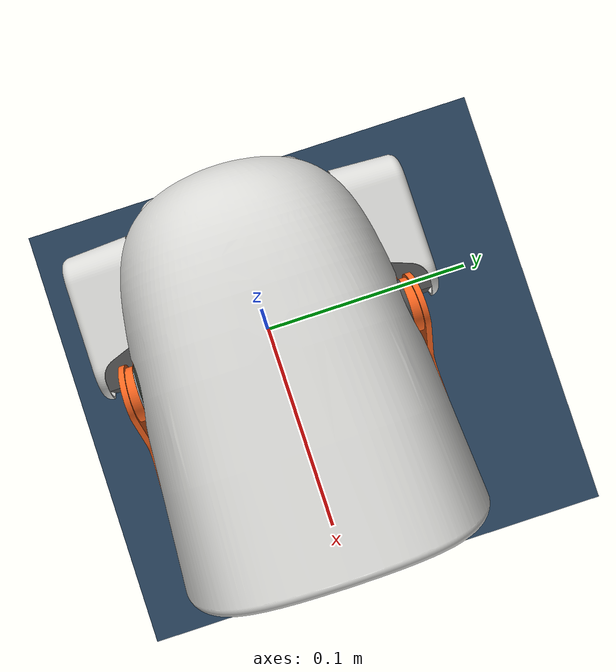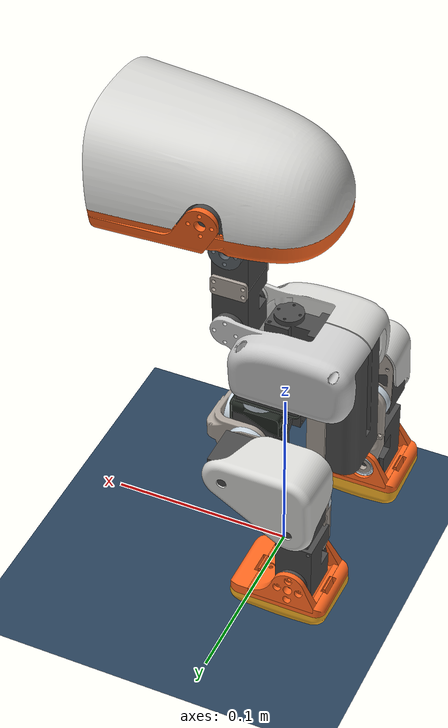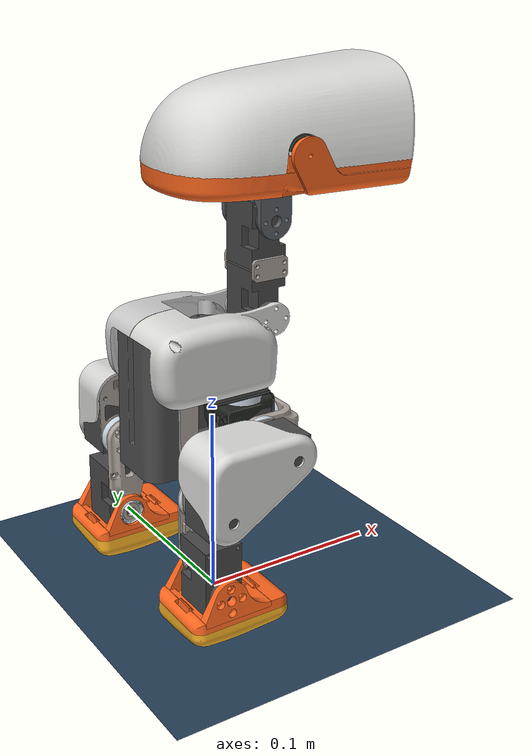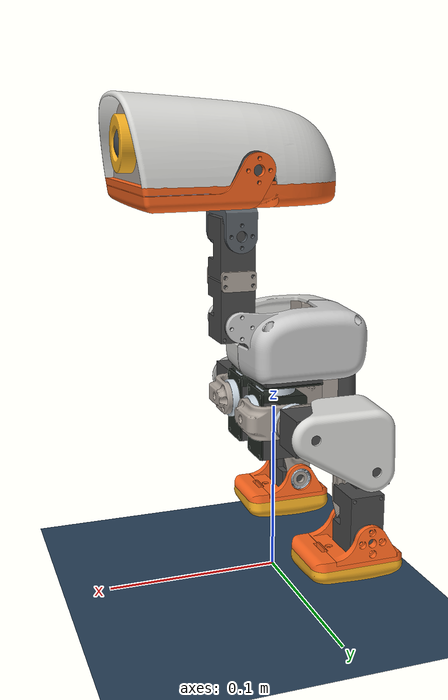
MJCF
<mujoco model="mjlab scene">
  <compiler angle="radian" meshdir="meshes"/>

  <option timestep="0.005" integrator="implicitfast" iterations="10" ls_iterations="20"/>

  <size nkey="1"/>

  <visual>
    <global azimuth="135" elevation="-25" offwidth="1920" offheight="1080"/>
    <quality shadowsize="8192"/>
    <headlight ambient="0.3 0.3 0.3" diffuse="0.6 0.6 0.6" specular="0 0 0"/>
    <scale forcewidth="0.25" contactwidth="0.4" contactheight="0.15" framelength="5" framewidth="0.3"/>
    <rgba haze="0.15 0.25 0.35 1" force="1 0 0 1"/>
  </visual>

  <statistic meansize="0.03" extent="2"/>

  <default>
    <default class="robot/main">

      <equality solref="0.002" solimp="0.99 0.999 0.0005"/>
      <default class="robot/microduck">
        <joint armature="0.005" frictionloss="0.1"/>

        <equality solref="0.02" solimp="0.9 0.95 0.001"/>
        <general biastype="affine" gainprm="50" biasprm="0 -50 1"/>
        <default class="robot/visual">
          <geom type="mesh" contype="0" conaffinity="0" group="2"/>
        </default>
        <default class="robot/collision">
          <geom group="3"/>
        </default>
      </default>
      <default class="robot/perfect_actuator">
        <joint armature="0.001" damping="0.15" frictionloss="0.1"/>
        <geom contype="0" conaffinity="0"/>

        <equality solref="0.02" solimp="0.9 0.95 0.001"/>
        <general forcerange="-20 20" biastype="affine" gainprm="10" biasprm="0 -10 -0.1"/>
      </default>
      <default class="robot/chosen_actuator_old">
        <joint armature="0.002" damping="0.048" frictionloss="0.006"/>
        <geom contype="0" conaffinity="0"/>

        <equality solref="0.02" solimp="0.9 0.95 0.001"/>
        <general ctrlrange="-10 10" forcerange="-0.91 0.91" biastype="affine" gainprm="0.52" biasprm="0 -0.52"/>
      </default>
      <default class="robot/chosen_actuator_new">
        <joint armature="0.002" damping="0.041" frictionloss="0.032"/>
        <geom contype="0" conaffinity="0"/>

        <equality solref="0.02" solimp="0.9 0.95 0.001"/>
        <general ctrlrange="-10 10" forcerange="-0.67 0.67" biastype="affine" gainprm="0.386" biasprm="0 -0.386"/>
      </default>
      <default class="robot/chosen_actuator_antoine">
        <joint armature="0.0017" damping="0.044" frictionloss="0.013"/>
        <geom contype="0" conaffinity="0"/>

        <equality solref="0.02" solimp="0.9 0.95 0.001"/>
        <general ctrlrange="-10 10" forcerange="-0.75 0.75" biastype="affine" gainprm="0.43" biasprm="0 -0.43"/>
      </default>
      <default class="robot/chosen_actuator">
        <joint armature="0.0018" damping="0.053" frictionloss="0.0048"/>
        <geom contype="0" conaffinity="0"/>

        <equality solref="0.02" solimp="0.9 0.95 0.001"/>
        <general ctrlrange="-10 10" forcerange="-0.96 0.96" biastype="affine" gainprm="0.55" biasprm="0 -0.55"/>
      </default>
      <default class="robot/passive_wheel">
        <joint armature="0.0001"/>
        <geom contype="0" conaffinity="0"/>

        <equality solref="0.02" solimp="0.9 0.95 0.001"/>
      </default>
      <default class="robot/passive_joint">
        <joint armature="0.0001"/>
        <geom contype="0" conaffinity="0"/>

        <equality solref="0.02" solimp="0.9 0.95 0.001"/>
      </default>
      <default class="robot/self_collision_only">
        <geom contype="2" conaffinity="2" group="3"/>
      </default>
    </default>
  </default>

  <asset>
    <texture type="2d" colorspace="auto" name="groundplane" builtin="checker" mark="edge" rgb1="0.2 0.3 0.4" rgb2="0.1 0.2 0.3" markrgb="0.8 0.8 0.8" width="300" height="300"/>
    <material name="groundplane" texture="groundplane" texuniform="true" texrepeat="4 4"/>
    <material name="robot/seeed_bearing__configuration__22x16x4_material" rgba="0.811765 0.858824 0.898039 1"/>
    <material name="robot/right_shell_material" rgba="0.85098 0.85098 0.839216 1"/>
    <material name="robot/banana_pcb_locker_material" rgba="0.647059 0.647059 0.647059 1"/>
    <material name="robot/trunk_base_material" rgba="0.129412 0.152941 0.129412 1"/>
    <material name="robot/xl330_material" rgba="0.286275 0.286275 0.286275 1"/>
    <material name="robot/power_support_material" rgba="0.67451 0.639216 0.603922 1"/>
    <material name="robot/np_f970_material" rgba="0.301961 0.301961 0.301961 1"/>
    <material name="robot/left_shell_material" rgba="0.8 0.8 0.8 1"/>
    <material name="robot/yaw2roll_material" rgba="0.129412 0.152941 0.129412 1"/>
    <material name="robot/bearing_roll_material" rgba="0.129412 0.152941 0.129412 1"/>
    <material name="robot/hip_l_material" rgba="0.67451 0.639216 0.603922 1"/>
    <material name="robot/upper_leg_left_material" rgba="0.85098 0.85098 0.839216 1"/>
    <material name="robot/upper_leg_rigidity_plate_material" rgba="0.67451 0.639216 0.603922 1"/>
    <material name="robot/leg_material" rgba="0.67451 0.639216 0.603922 1"/>
    <material name="robot/sole_left_material" rgba="0.956863 0.686275 0.137255 1"/>
    <material name="robot/foot_left_material" rgba="1 0.403922 0.121569 1"/>
    <material name="robot/seeed_bearing__configuration_default_material" rgba="0.811765 0.858824 0.898039 1"/>
    <material name="robot/ankle_left_material" rgba="1 0.403922 0.121569 1"/>
    <material name="robot/neck_material" rgba="0.67451 0.639216 0.603922 1"/>
    <material name="robot/neck_pitch_material" rgba="0.34902 0.376471 0.4 1"/>
    <material name="robot/yaw_roll_motion_material" rgba="0.129412 0.152941 0.129412 1"/>
    <material name="robot/lens_material" rgba="0.262745 0.282353 0.301961 1"/>
    <material name="robot/face_part_material" rgba="0.67451 0.639216 0.603922 1"/>
    <material name="robot/jaw_soft_material" rgba="0.85098 0.756863 0.866667 1"/>
    <material name="robot/motor_support_material" rgba="0.129412 0.152941 0.129412 1"/>
    <material name="robot/top_head_shell_material" rgba="0.85098 0.85098 0.839216 1"/>
    <material name="robot/elec_rpi_robot_hat_pcb_material" rgba="0.313725 0.486275 0.411765 1"/>
    <material name="robot/soft_mouth_top_material" rgba="0.85098 0.756863 0.866667 1"/>
    <material name="robot/noenoeil_material" rgba="0.956863 0.686275 0.137255 1"/>
    <material name="robot/jaw_material" rgba="1 0.403922 0.121569 1"/>
    <material name="robot/bottom_head_shell_material" rgba="1 0.403922 0.121569 1"/>
    <material name="robot/m12_lens_holder_material" rgba="0.262745 0.282353 0.301961 1"/>
    <material name="robot/pcb__raspberry_pi_zero_2_w_material" rgba="0.498039 0.498039 0.498039 1"/>
    <material name="robot/speaker_material" rgba="0.294118 0.290196 0.290196 1"/>
    <material name="robot/upper_leg_right_material" rgba="0.85098 0.85098 0.839216 1"/>
    <material name="robot/ankle_right_material" rgba="1 0.403922 0.121569 1"/>
    <material name="robot/sole_right_material" rgba="0.956863 0.686275 0.137255 1"/>
    <material name="robot/foot_right_material" rgba="1 0.403922 0.121569 1"/>
    <mesh name="robot/right_shell" file="right_shell.stl"/>
    <mesh name="robot/speaker" file="speaker.stl"/>
    <mesh name="robot/banana_pcb_locker" file="banana_pcb_locker.stl"/>
    <mesh name="robot/top_head_shell" file="top_head_shell.stl"/>
    <mesh name="robot/bearing_roll" file="bearing_roll.stl"/>
    <mesh name="robot/ankle_left" file="ankle_left.stl"/>
    <mesh name="robot/upper_leg_rigidity_plate" file="upper_leg_rigidity_plate.stl"/>
    <mesh name="robot/neck_pitch" file="neck_pitch.stl"/>
    <mesh name="robot/noenoeil" file="noenoeil.stl"/>
    <mesh name="robot/face_part" file="face_part.stl"/>
    <mesh name="robot/pcb__raspberry_pi_zero_2_w" file="pcb__raspberry_pi_zero_2_w.stl"/>
    <mesh name="robot/foot_right" file="foot_right.stl"/>
    <mesh name="robot/seeed_bearing__configuration__22x16x4" file="seeed_bearing__configuration__22x16x4.stl"/>
    <mesh name="robot/elec_rpi_robot_hat_pcb" file="elec_rpi_robot_hat_pcb.stl"/>
    <mesh name="robot/xl330" file="xl330.stl"/>
    <mesh name="robot/jaw_soft" file="jaw_soft.stl"/>
    <mesh name="robot/hip_l" file="hip_l.stl"/>
    <mesh name="robot/bottom_head_shell" file="bottom_head_shell.stl"/>
    <mesh name="robot/yaw2roll" file="yaw2roll.stl"/>
    <mesh name="robot/seeed_bearing__configuration_default" file="seeed_bearing__configuration_default.stl"/>
    <mesh name="robot/ankle_right" file="ankle_right.stl"/>
    <mesh name="robot/motor_support" file="motor_support.stl"/>
    <mesh name="robot/foot_left" file="foot_left.stl"/>
    <mesh name="robot/upper_leg_right" file="upper_leg_right.stl"/>
    <mesh name="robot/power_support" file="power_support.stl"/>
    <mesh name="robot/np_f970" file="np_f970.stl"/>
    <mesh name="robot/neck" file="neck.stl"/>
    <mesh name="robot/yaw_roll_motion" file="yaw_roll_motion.stl"/>
    <mesh name="robot/lens" file="lens.stl"/>
    <mesh name="robot/sole_left" file="sole_left.stl"/>
    <mesh name="robot/upper_leg_left" file="upper_leg_left.stl"/>
    <mesh name="robot/trunk_base" file="trunk_base.stl"/>
    <mesh name="robot/left_shell" file="left_shell.stl"/>
    <mesh name="robot/sole_right" file="sole_right.stl"/>
    <mesh name="robot/jaw" file="jaw.stl"/>
    <mesh name="robot/leg" file="leg.stl"/>
    <mesh name="robot/soft_mouth_top" file="soft_mouth_top.stl"/>
    <mesh name="robot/m12_lens_holder" file="m12_lens_holder.stl"/>
  </asset>

  <worldbody>
    <site name="env_origin_0" pos="0 0 0" size="0.3" group="4" rgba="0.2 0.6 0.2 0.3"/>
    <light name="sun" pos="0 0 1.5" dir="0 0 -1" type="directional"/>
    <body name="terrain">
      <geom name="terrain" size="0 0 0.01" type="plane" material="groundplane"/>
    </body>
    <body name="robot/trunk_base" childclass="robot/microduck" pos="0 0 0.12">
      <inertial pos="-0.0226332 -2.70828e-05 0.00280064" quat="0.664866 0.238381 0.235012 0.667756" mass="0.199224" diaginertia="0.000145932 0.000140799 9.85265e-05"/>
      <joint name="robot/trunk_base_freejoint" type="free" armature="0" frictionloss="0"/>
      <geom class="robot/visual" pos="0.006 0.0175 -0.005" quat="1 0 0 0" material="robot/seeed_bearing__configuration__22x16x4_material" mesh="robot/seeed_bearing__configuration__22x16x4"/>
      <geom class="robot/visual" pos="0.004 -0.0005 -0.0175" quat="0.707107 0 0 0.707107" material="robot/right_shell_material" mesh="robot/right_shell"/>
      <geom class="robot/visual" pos="0.0042 0 -0.0175215" quat="0.707107 0 0 0.707107" material="robot/banana_pcb_locker_material" mesh="robot/banana_pcb_locker"/>
      <geom class="robot/visual" pos="0.004 0 -0.0175" quat="0.707107 0 0 0.707107" material="robot/trunk_base_material" mesh="robot/trunk_base"/>
      <geom class="robot/visual" pos="0.006 0.0175 0.0115" quat="0 -0.707107 0 -0.707107" material="robot/xl330_material" mesh="robot/xl330"/>
      <geom class="robot/visual" pos="0.004 0 -0.0175215" quat="0.707107 0 0 0.707107" material="robot/power_support_material" mesh="robot/power_support"/>
      <geom class="robot/self_collision_only" pos="0.004 0 -0.0175215" quat="0.707107 0 0 0.707107" type="mesh" material="robot/power_support_material" mesh="robot/power_support"/>
      <geom class="robot/visual" pos="-0.0359693 0 -0.00385049" quat="0.00617059 0.70708 -0.70708 -0.00617059" material="robot/np_f970_material" mesh="robot/np_f970"/>
      <geom class="robot/visual" pos="0.006 -0.0175 0.0115" quat="0 -0.707107 0 -0.707107" material="robot/xl330_material" mesh="robot/xl330"/>
      <geom class="robot/visual" pos="0.004 0 -0.0175785" quat="0.707107 0 0 0.707107" material="robot/left_shell_material" mesh="robot/left_shell"/>
      <geom class="robot/visual" pos="0.006 -0.0175 -0.005" quat="1 0 0 0" material="robot/seeed_bearing__configuration__22x16x4_material" mesh="robot/seeed_bearing__configuration__22x16x4"/>
      <site name="robot/imu" pos="-0.021 6.64098e-05 -0.0146984" group="3"/>
      <body name="robot/yaw2roll" pos="0.006 0.0175 -0.005" quat="0 -0.707107 -0.707107 0">
        <inertial pos="-8.8e-11 0.00099414 0.0168917" quat="0.99973 -0.0232487 0 0" mass="0.0230406" diaginertia="4.1964e-06 3.41989e-06 2.32413e-06"/>
        <joint name="robot/left_hip_yaw" class="robot/chosen_actuator" pos="0 0 0" axis="0 0 1" solreffriction="-50000 -200" solimpfriction="0.99 0.9999" range="-0.436332 0.523599" armature="0.00180774" damping="0" frictionloss="0"/>
        <geom class="robot/visual" pos="-0.0175 -0.002 0.0125" quat="0 1 0 0" material="robot/yaw2roll_material" mesh="robot/yaw2roll"/>
        <geom class="robot/visual" pos="0 0 0.0125" quat="0 -0.707107 0.707107 0" material="robot/xl330_material" mesh="robot/xl330"/>
        <geom class="robot/visual" pos="0 0.0165 0.0125" quat="0.5 0.5 0.5 -0.5" material="robot/seeed_bearing__configuration__22x16x4_material" mesh="robot/seeed_bearing__configuration__22x16x4"/>
        <geom class="robot/visual" pos="-0.0175 -0.002 0.0125" quat="0 -1 0 0" material="robot/bearing_roll_material" mesh="robot/bearing_roll"/>
        <body name="robot/hip_l" pos="0 0.0165 0.0125" quat="0.707107 -0.707107 0 0">
          <inertial pos="0.014815 1.6179e-08 -0.00829992" quat="0.94694 -8.2459e-07 -0.321411 -2.79883e-07" mass="0.00618934" diaginertia="1.15976e-06 1.15753e-06 3.52458e-07"/>
          <joint name="robot/left_hip_roll" class="robot/chosen_actuator" pos="0 0 0" axis="0 0 1" solreffriction="-50000 -200" solimpfriction="0.99 0.9999" range="-0.383972 0.383972" armature="0.00180774" damping="0" frictionloss="0"/>
          <geom class="robot/visual" pos="0.021 0 -0.0185" quat="0.5 0.5 0.5 0.5" material="robot/seeed_bearing__configuration__22x16x4_material" mesh="robot/seeed_bearing__configuration__22x16x4"/>
          <geom class="robot/visual" pos="-0.0175 0 -0.0185" quat="0.707107 -0.707107 0 0" material="robot/hip_l_material" mesh="robot/hip_l"/>
          <body name="robot/upper_leg_left" pos="0.025 0 -0.0185" quat="0.5 -0.5 0.5 -0.5">
            <inertial pos="0.006766 0.0228838 0.0134531" quat="0.620818 0.374279 -0.583696 0.365786" mass="0.0482067" diaginertia="1.98453e-05 1.9108e-05 8.11799e-06"/>
            <joint name="robot/left_hip_pitch" class="robot/chosen_actuator" pos="0 0 0" axis="0 0 1" solreffriction="-50000 -200" solimpfriction="0.99 0.9999" range="-1.5708 1.5708" armature="0.00180774" damping="0" frictionloss="0"/>
            <geom class="robot/visual" pos="0 0 -0.0425" quat="0.5 -0.5 -0.5 -0.5" material="robot/upper_leg_left_material" mesh="robot/upper_leg_left"/>
            <geom class="robot/visual" pos="0.022 0.0357771 0.0125" quat="0 0.707107 0 0.707107" material="robot/xl330_material" mesh="robot/xl330"/>
            <geom class="robot/visual" pos="0 0 -0.0425" quat="0.5 -0.5 -0.5 -0.5" material="robot/upper_leg_rigidity_plate_material" mesh="robot/upper_leg_rigidity_plate"/>
            <geom class="robot/visual" pos="0.022 0.0357771 -0.004" quat="0 0 0 1" material="robot/seeed_bearing__configuration__22x16x4_material" mesh="robot/seeed_bearing__configuration__22x16x4"/>
            <geom class="robot/visual" pos="0 0 0.0125" quat="0.5 0.5 -0.5 0.5" material="robot/xl330_material" mesh="robot/xl330"/>
            <body name="robot/leg" pos="0.022 0.0357771 -0.004" quat="0 0.707107 0.707107 0">
              <inertial pos="-1.52e-10 0.0318937 -0.00953505" quat="0.806473 0.591271 0 0" mass="0.0215844" diaginertia="5.25056e-06 4.58054e-06 1.91378e-06"/>
              <joint name="robot/left_knee" class="robot/chosen_actuator" pos="0 0 0" axis="0 0 1" solreffriction="-50000 -200" solimpfriction="0.99 0.9999" range="-1.5708 1.5708" armature="0.00180774" damping="0" frictionloss="0"/>
              <geom class="robot/visual" pos="-0.022 0.0357771 0.0385" quat="0.5 0.5 0.5 -0.5" material="robot/leg_material" mesh="robot/leg"/>
              <geom class="robot/self_collision_only" pos="-0.022 0.0357771 0.0385" quat="0.5 0.5 0.5 -0.5" type="mesh" material="robot/leg_material" mesh="robot/leg"/>
              <geom class="robot/visual" pos="0 0.042 -0.0115" quat="0.5 -0.5 -0.5 -0.5" material="robot/xl330_material" mesh="robot/xl330"/>
              <body name="robot/ankle_left" pos="0 0.042 -0.026" quat="0 -1 0 0">
                <inertial pos="-0.00615742 -0.0137483 -0.0156585" quat="0.474723 0.505182 0.517427 0.501696" mass="0.0300246" diaginertia="1.11623e-05 7.7432e-06 5.90334e-06"/>
                <joint name="robot/left_ankle" class="robot/chosen_actuator" pos="0 0 0" axis="0 0 1" solreffriction="-50000 -200" solimpfriction="0.99 0.9999" range="-1.5708 1.5708" armature="0.00180774" damping="0" frictionloss="0"/>
                <geom class="robot/visual" pos="-0.022 0.00622291 -0.0647" quat="0.5 -0.5 -0.5 -0.5" material="robot/sole_left_material" mesh="robot/sole_left"/>
                <geom name="robot/left_foot_collision" class="robot/collision" pos="-0.022 0.00622291 -0.0647" quat="0.5 -0.5 -0.5 -0.5" type="mesh" priority="1" material="robot/sole_left_material" mesh="robot/sole_left"/>
                <geom class="robot/visual" pos="-0.022 0.00622291 -0.0647" quat="0.5 -0.5 -0.5 -0.5" material="robot/foot_left_material" mesh="robot/foot_left"/>
                <geom class="robot/visual" pos="0 0 -0.0322" quat="0 0 0 1" material="robot/seeed_bearing__configuration_default_material" mesh="robot/seeed_bearing__configuration_default"/>
                <geom class="robot/visual" pos="-0.022 0.00622291 -0.0647" quat="0.5 -0.5 -0.5 -0.5" material="robot/ankle_left_material" mesh="robot/ankle_left"/>
                <site name="robot/left_foot" pos="0 -0.0238146 -0.0140852" quat="0 0 -0.707107 -0.707107" group="3"/>
              </body>
            </body>
          </body>
        </body>
      </body>
      <body name="robot/neck" pos="0.026 0.0145 0.0324215" quat="0 0 0.707107 -0.707107">
        <inertial pos="0 -0.025 0.0141665" quat="0.707107 0.707107 0 0" mass="0.0368414" diaginertia="1.72925e-05 1.63707e-05 3.12694e-06"/>
        <joint name="robot/neck_pitch" class="robot/chosen_actuator" pos="0 0 0" axis="0 0 1" solreffriction="-50000 -200" solimpfriction="0.99 0.9999" range="-1.5708 1.0472" armature="0.00180774" damping="0" frictionloss="0"/>
        <geom class="robot/visual" pos="0.022 0.05 0.028" quat="0.5 0.5 0.5 -0.5" material="robot/neck_material" mesh="robot/neck"/>
        <geom class="robot/visual" pos="0 0 0.0145" quat="0.5 -0.5 -0.5 -0.5" material="robot/xl330_material" mesh="robot/xl330"/>
        <geom class="robot/visual" pos="0 -0.05 0.0145" quat="0.5 0.5 -0.5 0.5" material="robot/xl330_material" mesh="robot/xl330"/>
        <geom class="robot/visual" pos="0.022 0.05 0.003" quat="0.5 0.5 0.5 -0.5" material="robot/neck_material" mesh="robot/neck"/>
        <body name="robot/neck_pitch" pos="0 -0.05 0" quat="0 1 0 0">
          <inertial pos="-6.533e-09 0.0116641 -0.0145" mass="0.00572" diaginertia="1.09186e-06 9.66855e-07 5.12111e-07"/>
          <joint name="robot/head_pitch" class="robot/chosen_actuator" pos="0 0 0" axis="0 0 1" solreffriction="-50000 -200" solimpfriction="0.99 0.9999" range="-1.5708 1.5708" armature="0.00180774" damping="0" frictionloss="0"/>
          <geom class="robot/visual" pos="0 0.0287931 -0.0145" quat="0.5 -0.5 -0.5 -0.5" material="robot/neck_pitch_material" mesh="robot/neck_pitch"/>
          <geom class="robot/visual" pos="0 0.0207931 -0.0145" quat="0.707107 0.707107 0 0" material="robot/seeed_bearing__configuration__22x16x4_material" mesh="robot/seeed_bearing__configuration__22x16x4"/>
          <body name="robot/yaw_roll_motion" pos="0 0.0186931 -0.0145" quat="0 0 -0.707107 -0.707107">
            <inertial pos="-0.000166657 -0.00500964 0.0178065" quat="0.174483 0.690172 -0.0192577 0.702031" mass="0.0486" diaginertia="9.65512e-06 8.11788e-06 6.8878e-06"/>
            <joint name="robot/head_yaw" class="robot/chosen_actuator" pos="0 0 0" axis="0 0 1" solreffriction="-50000 -200" solimpfriction="0.99 0.9999" range="-2.96706 2.96706" armature="0.00180774" damping="0" frictionloss="0"/>
            <geom class="robot/visual" pos="0 0 0.01" quat="0.707107 0 0 0.707107" material="robot/yaw_roll_motion_material" mesh="robot/yaw_roll_motion"/>
            <geom class="robot/visual" pos="0 0 0.0145" quat="0.5 -0.5 -0.5 -0.5" material="robot/xl330_material" mesh="robot/xl330"/>
            <geom class="robot/visual" pos="-0.016 0 0.0145" quat="0.707107 0 -0.707107 0" material="robot/seeed_bearing__configuration__22x16x4_material" mesh="robot/seeed_bearing__configuration__22x16x4"/>
            <geom class="robot/visual" pos="0.018 0 0.0145" quat="0.707107 0 -0.707107 0" material="robot/seeed_bearing__configuration__22x16x4_material" mesh="robot/seeed_bearing__configuration__22x16x4"/>
            <body name="robot/jaw_soft" pos="-0.0179 0 0.0145" quat="0.707107 0 -0.707107 0">
              <inertial pos="0.00460523 0.00120047 -0.0324761" quat="0.999608 0.0201488 -0.0191644 -0.00313932" mass="0.188766" diaginertia="0.000321067 0.000254266 0.000149461"/>
              <joint name="robot/head_roll" class="robot/chosen_actuator" pos="0 0 0" axis="0 0 1" solreffriction="-50000 -200" solimpfriction="0.99 0.9999" range="-0.436332 0.436332" armature="0.00180774" damping="0" frictionloss="0"/>
              <geom class="robot/visual" pos="0.0155 -9.13778e-05 -0.05548" quat="0.5 -0.5 0.5 -0.5" material="robot/lens_material" mesh="robot/lens"/>
              <geom class="robot/visual" pos="-0.0045 -9.13778e-05 -0.0178" quat="0.5 0.5 0.5 0.5" material="robot/face_part_material" mesh="robot/face_part"/>
              <geom class="robot/visual" pos="0.003 0.0255 -0.018" quat="0.707107 0 0 -0.707107" material="robot/xl330_material" mesh="robot/xl330"/>
              <geom class="robot/visual" pos="-0.0046 0 -0.0179996" quat="0.5 0.5 0.5 0.5" material="robot/jaw_soft_material" mesh="robot/jaw_soft"/>
              <geom class="robot/visual" pos="-0.0045 0 -0.018" quat="0.5 0.5 0.5 0.5" material="robot/motor_support_material" mesh="robot/motor_support"/>
              <geom class="robot/visual" pos="-0.0045 0 -0.018" quat="0.5 0.5 0.5 0.5" material="robot/top_head_shell_material" mesh="robot/top_head_shell"/>
              <geom class="robot/visual" pos="0 0 0.0145" quat="0.5 -0.5 -0.5 -0.5" material="robot/xl330_material" mesh="robot/xl330"/>
              <geom class="robot/visual" pos="0.0032 -0.04 -0.018" quat="0.5 -0.5 0.5 0.5" material="robot/seeed_bearing__configuration_default_material" mesh="robot/seeed_bearing__configuration_default"/>
              <geom class="robot/visual" pos="0.02694 0.0289936 -0.0519" quat="0.707107 0 0 -0.707107" material="robot/elec_rpi_robot_hat_pcb_material" mesh="robot/elec_rpi_robot_hat_pcb"/>
              <geom class="robot/visual" pos="-0.00420071 1.7776e-08 -0.0180814" quat="0.5 0.5 0.5 0.5" material="robot/soft_mouth_top_material" mesh="robot/soft_mouth_top"/>
              <geom class="robot/visual" pos="-0.0045 -9.13778e-05 -0.0178" quat="0.5 0.5 0.5 0.5" material="robot/noenoeil_material" mesh="robot/noenoeil"/>
              <geom class="robot/visual" pos="-0.0045 0 -0.018" quat="0.5 0.5 0.5 0.5" material="robot/jaw_material" mesh="robot/jaw"/>
              <geom class="robot/visual" pos="-0.0043 0 -0.018" quat="0.5 0.5 0.5 0.5" material="robot/bottom_head_shell_material" mesh="robot/bottom_head_shell"/>
              <geom class="robot/visual" pos="0.0155 -9.13778e-05 -0.05558" quat="0.5 -0.5 0.5 -0.5" material="robot/m12_lens_holder_material" mesh="robot/m12_lens_holder"/>
              <geom class="robot/visual" pos="0.015435 -1.13778e-05 -0.06001" quat="0.5 -0.5 -0.5 0.5" material="robot/pcb__raspberry_pi_zero_2_w_material" mesh="robot/pcb__raspberry_pi_zero_2_w"/>
              <geom class="robot/visual" pos="0.01 -0.016786 0.0260226" quat="0.5 0.5 0.5 0.5" material="robot/speaker_material" mesh="robot/speaker"/>
              <site name="robot/head_camera" pos="0.0155 -9.13778e-05 -0.0733" quat="0.707107 0 0.707107 0" group="3"/>
              <site name="robot/tof" pos="0.0135 0.0224086 -0.0733" quat="0.707107 0 0.707107 0" group="3"/>
              <site name="robot/head_imu" pos="0.0152323 0.000111069 -0.05106" group="3"/>
              <site name="robot/mouth_tip" pos="-0.00809334 0 -0.0777383" quat="0.704015 0 0.710185 0" group="3"/>
              <camera name="robot/head_camera" pos="0.0155 -9.13778e-05 -0.0733" quat="0 0 -1 0"/>
            </body>
          </body>
        </body>
      </body>
      <body name="robot/bearing_roll" pos="0.006 -0.0175 -0.005" quat="0 -0.707107 -0.707107 0">
        <inertial pos="-8.8e-11 0.00099414 0.0168917" quat="0.99973 -0.0232487 0 0" mass="0.0230406" diaginertia="4.1964e-06 3.41989e-06 2.32413e-06"/>
        <joint name="robot/right_hip_yaw" class="robot/chosen_actuator" pos="0 0 0" axis="0 0 1" solreffriction="-50000 -200" solimpfriction="0.99 0.9999" range="-0.523599 0.436332" armature="0.00180774" damping="0" frictionloss="0"/>
        <geom class="robot/visual" pos="-0.0175 -0.002 0.0125" quat="0 1 0 0" material="robot/yaw2roll_material" mesh="robot/yaw2roll"/>
        <geom class="robot/visual" pos="0 0 0.0125" quat="0 -0.707107 0.707107 0" material="robot/xl330_material" mesh="robot/xl330"/>
        <geom class="robot/visual" pos="-0.0175 -0.002 0.0125" quat="0 1 0 0" material="robot/bearing_roll_material" mesh="robot/bearing_roll"/>
        <geom class="robot/visual" pos="0 0.0165 0.0125" quat="0.5 0.5 0.5 -0.5" material="robot/seeed_bearing__configuration__22x16x4_material" mesh="robot/seeed_bearing__configuration__22x16x4"/>
        <body name="robot/hip_l_2" pos="0 0.0165 0.0125" quat="0 0 0.707107 0.707107">
          <inertial pos="0.014815 1.6212e-08 -0.00829992" quat="0.94694 -8.2459e-07 -0.321411 -2.79883e-07" mass="0.00618934" diaginertia="1.15976e-06 1.15753e-06 3.52458e-07"/>
          <joint name="robot/right_hip_roll" class="robot/chosen_actuator" pos="0 0 0" axis="0 0 1" solreffriction="-50000 -200" solimpfriction="0.99 0.9999" range="-0.383972 0.383972" armature="0.00180774" damping="0" frictionloss="0"/>
          <geom class="robot/visual" pos="-0.0175 0 -0.0185" quat="0.707107 -0.707107 0 0" material="robot/hip_l_material" mesh="robot/hip_l"/>
          <geom class="robot/visual" pos="0.025 0 -0.0185" quat="0.5 0.5 -0.5 -0.5" material="robot/seeed_bearing__configuration__22x16x4_material" mesh="robot/seeed_bearing__configuration__22x16x4"/>
          <body name="robot/upper_leg_right" pos="0.025 0 -0.0185" quat="0.5 -0.5 0.5 -0.5">
            <inertial pos="-0.006766 0.0228838 0.0134531" quat="0.365786 0.583696 -0.374279 0.620818" mass="0.0482067" diaginertia="1.98453e-05 1.9108e-05 8.11799e-06"/>
            <joint name="robot/right_hip_pitch" class="robot/chosen_actuator" pos="0 0 0" axis="0 0 1" solreffriction="-50000 -200" solimpfriction="0.99 0.9999" range="-1.5708 1.5708" armature="0.00180774" damping="0" frictionloss="0"/>
            <geom class="robot/visual" pos="-0.022 0.0357771 0.0125" quat="0.707107 0 -0.707107 0" material="robot/xl330_material" mesh="robot/xl330"/>
            <geom class="robot/visual" pos="-0.022 0.0357771 0" quat="0 1 0 0" material="robot/seeed_bearing__configuration__22x16x4_material" mesh="robot/seeed_bearing__configuration__22x16x4"/>
            <geom class="robot/visual" pos="0 0 0.0435" quat="0.5 -0.5 0.5 0.5" material="robot/upper_leg_rigidity_plate_material" mesh="robot/upper_leg_rigidity_plate"/>
            <geom class="robot/visual" pos="0 0 -0.0425" quat="0.5 -0.5 0.5 0.5" material="robot/upper_leg_right_material" mesh="robot/upper_leg_right"/>
            <geom class="robot/visual" pos="0 0 0.0125" quat="0.5 0.5 -0.5 0.5" material="robot/xl330_material" mesh="robot/xl330"/>
            <body name="robot/leg_2" pos="-0.022 0.0357771 -0.004" quat="0 1 0 0">
              <inertial pos="-0.0318937 -1.52e-10 -0.00953505" quat="0.570263 0.418091 0.418091 0.570263" mass="0.0215844" diaginertia="5.25056e-06 4.58054e-06 1.91378e-06"/>
              <joint name="robot/right_knee" class="robot/chosen_actuator" pos="0 0 0" axis="0 0 1" solreffriction="-50000 -200" solimpfriction="0.99 0.9999" range="-1.5708 1.5708" armature="0.00180774" damping="0" frictionloss="0"/>
              <geom class="robot/visual" pos="-0.042 0 -0.0115" quat="0.707107 0 -0.707107 0" material="robot/xl330_material" mesh="robot/xl330"/>
              <geom class="robot/visual" pos="-0.0357771 -0.022 0.0385" quat="0.707107 0 0.707107 0" material="robot/leg_material" mesh="robot/leg"/>
              <geom class="robot/self_collision_only" pos="-0.0357771 -0.022 0.0385" quat="0.707107 0 0.707107 0" type="mesh" material="robot/leg_material" mesh="robot/leg"/>
              <body name="robot/ankle_right" pos="-0.042 0 -0.026" quat="0 -0.707107 -0.707107 0">
                <inertial pos="0.00615539 -0.0137482 -0.0156566" quat="0.517424 0.501653 0.474682 0.505266" mass="0.0300251" diaginertia="1.11622e-05 7.74321e-06 5.90344e-06"/>
                <joint name="robot/right_ankle" class="robot/chosen_actuator" pos="0 0 0" axis="0 0 1" solreffriction="-50000 -200" solimpfriction="0.99 0.9999" range="-1.5708 1.5708" armature="0.00180774" damping="0" frictionloss="0"/>
                <geom class="robot/visual" pos="0.022 0.00622291 -0.0647" quat="0.5 -0.5 0.5 0.5" material="robot/ankle_right_material" mesh="robot/ankle_right"/>
                <geom class="robot/visual" pos="0.022 0.00622291 -0.0647" quat="0.5 -0.5 0.5 0.5" material="robot/sole_right_material" mesh="robot/sole_right"/>
                <geom name="robot/right_foot_collision" class="robot/collision" pos="0.022 0.00622291 -0.0647" quat="0.5 -0.5 0.5 0.5" type="mesh" priority="1" material="robot/sole_right_material" mesh="robot/sole_right"/>
                <geom class="robot/visual" pos="0 0 -0.0292" quat="0 -1 0 0" material="robot/seeed_bearing__configuration_default_material" mesh="robot/seeed_bearing__configuration_default"/>
                <geom class="robot/visual" pos="0.022 0.00622291 -0.0647" quat="0.5 -0.5 0.5 0.5" material="robot/foot_right_material" mesh="robot/foot_right"/>
                <site name="robot/right_foot" pos="0 -0.0238146 -0.0140852" quat="0.707107 -0.707107 0 0" group="3"/>
              </body>
            </body>
          </body>
        </body>
      </body>
    </body>
  </worldbody>

  <actuator>
    <general name="robot/left_hip_yaw" class="robot/chosen_actuator" joint="robot/left_hip_yaw" forcelimited="true" forcerange="-1.06755 1.06755" biastype="none" gainprm="1"/>
    <general name="robot/left_hip_roll" class="robot/chosen_actuator" joint="robot/left_hip_roll" forcelimited="true" forcerange="-1.06755 1.06755" biastype="none" gainprm="1"/>
    <general name="robot/left_hip_pitch" class="robot/chosen_actuator" joint="robot/left_hip_pitch" forcelimited="true" forcerange="-1.06755 1.06755" biastype="none" gainprm="1"/>
    <general name="robot/left_knee" class="robot/chosen_actuator" joint="robot/left_knee" forcelimited="true" forcerange="-1.06755 1.06755" biastype="none" gainprm="1"/>
    <general name="robot/left_ankle" class="robot/chosen_actuator" joint="robot/left_ankle" forcelimited="true" forcerange="-1.06755 1.06755" biastype="none" gainprm="1"/>
    <general name="robot/neck_pitch" class="robot/chosen_actuator" joint="robot/neck_pitch" forcelimited="true" forcerange="-1.06755 1.06755" biastype="none" gainprm="1"/>
    <general name="robot/head_pitch" class="robot/chosen_actuator" joint="robot/head_pitch" forcelimited="true" forcerange="-1.06755 1.06755" biastype="none" gainprm="1"/>
    <general name="robot/head_yaw" class="robot/chosen_actuator" joint="robot/head_yaw" forcelimited="true" forcerange="-1.06755 1.06755" biastype="none" gainprm="1"/>
    <general name="robot/head_roll" class="robot/chosen_actuator" joint="robot/head_roll" forcelimited="true" forcerange="-1.06755 1.06755" biastype="none" gainprm="1"/>
    <general name="robot/right_hip_yaw" class="robot/chosen_actuator" joint="robot/right_hip_yaw" forcelimited="true" forcerange="-1.06755 1.06755" biastype="none" gainprm="1"/>
    <general name="robot/right_hip_roll" class="robot/chosen_actuator" joint="robot/right_hip_roll" forcelimited="true" forcerange="-1.06755 1.06755" biastype="none" gainprm="1"/>
    <general name="robot/right_hip_pitch" class="robot/chosen_actuator" joint="robot/right_hip_pitch" forcelimited="true" forcerange="-1.06755 1.06755" biastype="none" gainprm="1"/>
    <general name="robot/right_knee" class="robot/chosen_actuator" joint="robot/right_knee" forcelimited="true" forcerange="-1.06755 1.06755" biastype="none" gainprm="1"/>
    <general name="robot/right_ankle" class="robot/chosen_actuator" joint="robot/right_ankle" forcelimited="true" forcerange="-1.06755 1.06755" biastype="none" gainprm="1"/>
  </actuator>

  <sensor>
    <framequat objtype="site" objname="robot/imu" name="robot/orientation" noise="0.001"/>
    <gyro site="robot/imu" name="robot/angular-velocity" noise="0.005"/>
    <gyro site="robot/imu" name="robot/imu_ang_vel"/>
    <velocimeter site="robot/imu" name="robot/imu_lin_vel"/>
    <accelerometer site="robot/imu" name="robot/imu_accel"/>
    <subtreeangmom body="robot/trunk_base" name="robot/root_angmom"/>
    <contact geom1="robot/left_foot_collision" body2="terrain" reduce="netforce" name="feet_ground_contact_left_foot_collision_found"/>
    <contact geom1="robot/left_foot_collision" body2="terrain" data="force" reduce="netforce" name="feet_ground_contact_left_foot_collision_force"/>
    <contact geom1="robot/right_foot_collision" body2="terrain" reduce="netforce" name="feet_ground_contact_right_foot_collision_found"/>
    <contact geom1="robot/right_foot_collision" body2="terrain" data="force" reduce="netforce" name="feet_ground_contact_right_foot_collision_force"/>
    <contact subtree1="robot/trunk_base" subtree2="robot/trunk_base" name="self_collision_trunk_base_found"/>
  </sensor>

  <keyframe>
    <key name="init_state" qpos="0 0 0 1 0 0 0 0 -0.0873 -0.4579 -0.0049 0.453 0.3491 0.3491 0 0 0 0.0873 0.4579 0.0049 -0.453" ctrl="0 -0.0873 -0.4579 -0.0049 0.453 0.3491 0.3491 0 0 0 0.0873 0.4579 0.0049 -0.453"/>
  </keyframe>
</mujoco>
